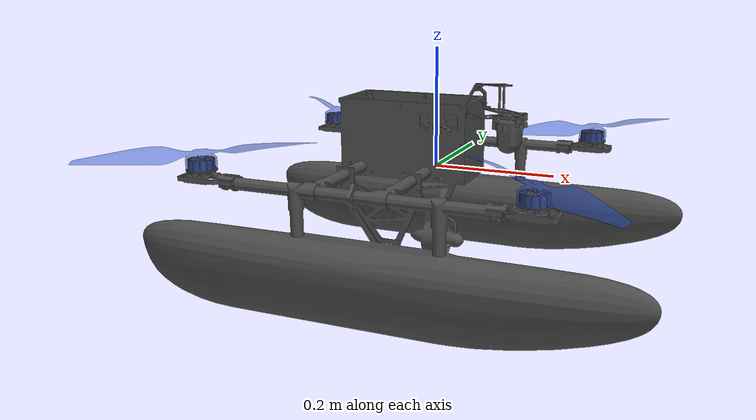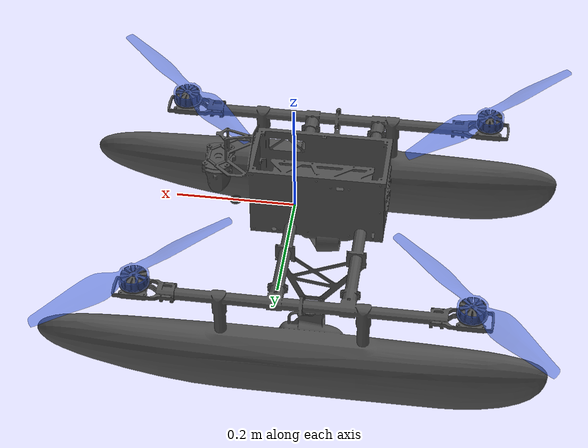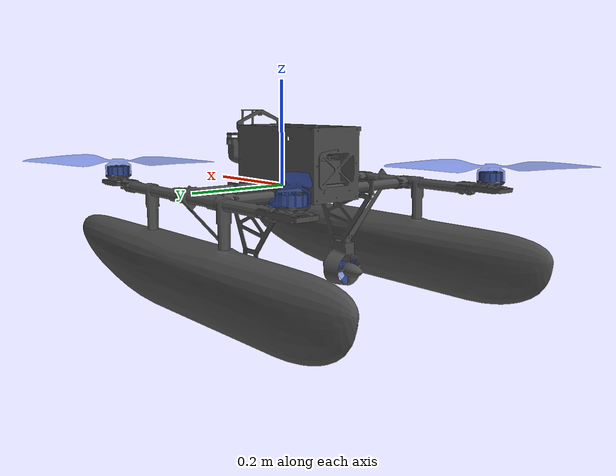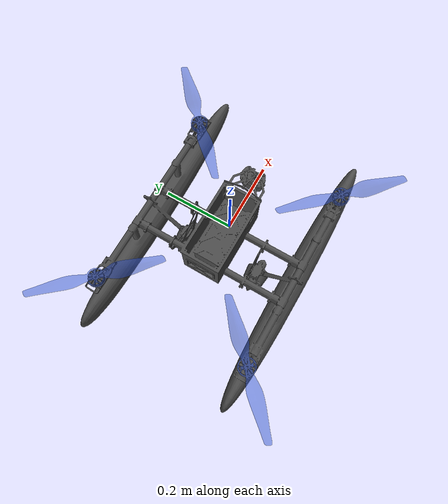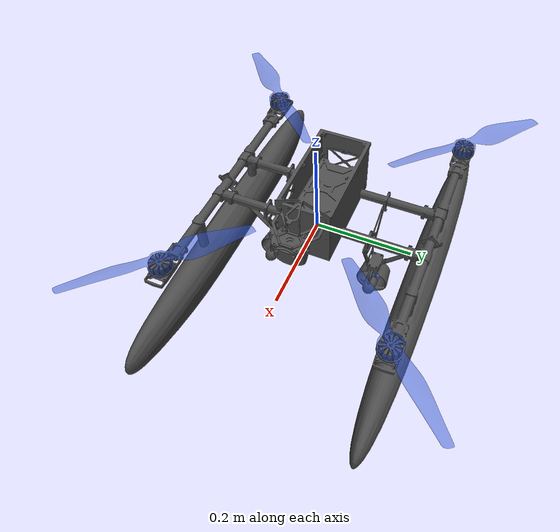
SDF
<sdf version='1.5'>
  <model name='amp_drone_camera'>
    <link name='base_link'>
      <pose>0 0 0 0 0 0</pose> <!-- This pose is the visual offset of the vehicle + the reference frame -->
      <inertial>
        <pose>-0.044 -0.00085582 0.01685 0 0 0</pose> <!-- This pose is the center of mass of the vehicle-->
        <mass>5.05</mass>
        <inertia>
          <ixx>0.139889</ixx>
          <ixy>1.263e-05</ixy>
          <ixz>3.3972e-04</ixz>
          <iyy>0.132500</iyy>
          <iyz>2.36e-06</iyz>
          <izz>0.220874</izz>
        </inertia>
      </inertial>
      <collision name='base_link_collision'>
        <pose>0 0 -0.0385 0 0 0</pose> <!-- The z Axis has an offset to create a centered box for collisions-->
        <geometry>
          <box>
            <size>0.88 0.57 0.35</size>
          </box>
        </geometry>
        <surface>
          <contact>
            <ode>
              <min_depth>0.001</min_depth>
              <max_vel>0</max_vel>
            </ode>
          </contact>
          <friction>
            <ode/>
          </friction>
        </surface>
      </collision>
      <visual name='base_link_visual'>
        <pose>0 0 0 0 0 0</pose>
        <geometry>
          <mesh>
            <scale>1 1 1</scale>
            <uri>model://amp_drone_camera/meshes/base_link.STL</uri>
          </mesh>
        </geometry>
        <material>
          <script>
            <name>Gazebo/DarkGrey</name>
            <uri>file://media/materials/scripts/gazebo.material</uri>
          </script>
        </material>
      </visual>
      <gravity>1</gravity>
      <velocity_decay/>
   </link>

   <!-- IMU link-->
   <link name='/imu_link'>
      <pose>0 0 0 0 0 0</pose>
      <inertial>
        <pose>0 0 0 0 0 0</pose>
        <mass>0.015</mass>
        <inertia>
          <ixx>1e-05</ixx>
          <ixy>0</ixy>
          <ixz>0</ixz>
          <iyy>1e-05</iyy>
          <iyz>0</iyz>
          <izz>1e-05</izz>
        </inertia>
      </inertial>
    </link>
    <joint name='/imu_joint' type='revolute'>
      <child>/imu_link</child>
      <parent>base_link</parent>
      <axis>
        <xyz>1 0 0</xyz>
        <limit>
          <lower>0</lower>
          <upper>0</upper>
          <effort>0</effort>
          <velocity>0</velocity>
        </limit>
        <dynamics>
          <spring_reference>0</spring_reference>
          <spring_stiffness>0</spring_stiffness>
        </dynamics>
        <use_parent_model_frame>1</use_parent_model_frame>
      </axis>
    </joint>

   <!-- Rotor 1-->
   <link name='rotor_0'>
    <pose>0.2235 0.2295 0.0077 0 0 0.7854</pose>
      <inertial>
        <pose>0 0 0.0258 0 0 0</pose>
        <mass>0.116</mass>
        <inertia>
          <ixx>3.09562e-05</ixx>
          <ixy>-3.77446e-06</ixy>
          <ixz>-1.50909e-12</ixz>
          <iyy> 2.92643e-04</iyy>
          <iyz>-7.69251e-10</iyz>
          <izz>3.01533e-04</izz>
        </inertia>
      </inertial>
      <collision name='rotor_0_collision'>
        <pose>0 0 0.025 0 0 0</pose>
        <geometry>
          <cylinder>
            <length>0.05</length>
            <radius>0.19</radius>
          </cylinder>
        </geometry>
        <surface>
          <contact>
            <ode/>
          </contact>
          <friction>
            <ode/>
          </friction>
        </surface>
      </collision>
      <visual name='rotor_0_visual'>
        <pose>0 0 0 0 0 0</pose>
        <geometry>
          <mesh>
            <scale>1 1 1</scale>
            <uri>model://amp_drone_camera/meshes/propeller_0.STL</uri>
          </mesh>
        </geometry>
        <material>
          <script>
            <name>Gazebo/BlueTransparent</name>
            <uri>file://media/materials/scripts/gazebo.material</uri>
          </script>
        </material>
      </visual>
      <gravity>1</gravity>
      <velocity_decay/>
      <self_collide>0</self_collide>
    </link>
    <joint name='rotor_0_joint' type='revolute'>
      <child>rotor_0</child>
      <parent>base_link</parent>
      <pose>0 0 0 0 0 0</pose>
      <axis>
        <xyz>0 0 -1</xyz>
        <limit>
          <lower>-1e+16</lower>
          <upper>1e+16</upper>
        </limit>
        <dynamics>
          <spring_reference>0</spring_reference>
          <spring_stiffness>0</spring_stiffness>
        </dynamics>
        <use_parent_model_frame>1</use_parent_model_frame>
      </axis>
    </joint>

    <!-- Rotor 2-->
    <link name='rotor_1'>
    <pose>0.2235 -0.2295 0.0077 0 0 -0.7854</pose>
      <inertial>
        <pose>0 0 0.0258 0 0 0</pose>
        <mass>0.116</mass>
        <inertia>
          <ixx>3.09562e-05</ixx>
          <ixy>-3.77446e-06</ixy>
          <ixz>-1.50909e-12</ixz>
          <iyy> 2.92643e-04</iyy>
          <iyz>-7.69251e-10</iyz>
          <izz>3.01533e-04</izz>
        </inertia>
      </inertial>
      <collision name='rotor_1_collision'>
        <pose>0 0 0.025 0 0 0</pose>
        <geometry>
          <cylinder>
            <length>0.05</length>
            <radius>0.19</radius>
          </cylinder>
        </geometry>
        <surface>
          <contact>
            <ode/>
          </contact>
          <friction>
            <ode/>
          </friction>
        </surface>
      </collision>
      <visual name='rotor_1_visual'>
        <pose>0 0 0 0 0 0</pose>
        <geometry>
          <mesh>
            <scale>1 1 1</scale>
            <uri>model://amp_drone_camera/meshes/propeller_1.STL</uri>
          </mesh>
        </geometry>
        <material>
          <script>
            <name>Gazebo/BlueTransparent</name>
            <uri>file://media/materials/scripts/gazebo.material</uri>
          </script>
        </material>
      </visual>
      <gravity>1</gravity>
      <velocity_decay/>
      <self_collide>0</self_collide>
    </link>
    <joint name='rotor_1_joint' type='revolute'>
      <child>rotor_1</child>
      <parent>base_link</parent>
      <pose>0 0 0 0 0 0</pose>
      <axis>
        <xyz>0 0 -1</xyz>
        <limit>
          <lower>-1e+16</lower>
          <upper>1e+16</upper>
        </limit>
        <dynamics>
          <spring_reference>0</spring_reference>
          <spring_stiffness>0</spring_stiffness>
        </dynamics>
        <use_parent_model_frame>1</use_parent_model_frame>
      </axis>
    </joint>

    <!-- Rotor 3-->
    <link name='rotor_2'>
    <pose>-0.3095 -0.2295 0.0077 0 0 0.7854</pose>
      <inertial>
        <pose>0 0 0.0258 0 0 0</pose>
        <mass>0.116</mass>
        <inertia>
          <ixx>3.09562e-05</ixx>
          <ixy>-3.77446e-06</ixy>
          <ixz>-1.50909e-12</ixz>
          <iyy> 2.92643e-04</iyy>
          <iyz>-7.69251e-10</iyz>
          <izz>3.01533e-04</izz>
        </inertia>
      </inertial>
      <collision name='rotor_2_collision'>
        <pose>0 0 0.025 0 0 0</pose>
        <geometry>
          <cylinder>
            <length>0.05</length>
            <radius>0.19</radius>
          </cylinder>
        </geometry>
        <surface>
          <contact>
            <ode/>
          </contact>
          <friction>
            <ode/>
          </friction>
        </surface>
      </collision>
      <visual name='rotor_2_visual'>
        <pose>0 0 0 0 0 0</pose>
        <geometry>
          <mesh>
            <scale>1 1 1</scale>
            <uri>model://amp_drone_camera/meshes/propeller_0.STL</uri>
          </mesh>
        </geometry>
        <material>
          <script>
            <name>Gazebo/BlueTransparent</name>
            <uri>file://media/materials/scripts/gazebo.material</uri>
          </script>
        </material>
      </visual>
      <gravity>1</gravity>
      <velocity_decay/>
      <self_collide>0</self_collide>
    </link>
    <joint name='rotor_2_joint' type='revolute'>
      <child>rotor_2</child>
      <parent>base_link</parent>
      <pose>0 0 0 0 0 0</pose>
      <axis>
        <xyz>0 0 -1</xyz>
        <limit>
          <lower>-1e+16</lower>
          <upper>1e+16</upper>
        </limit>
        <dynamics>
          <spring_reference>0</spring_reference>
          <spring_stiffness>0</spring_stiffness>
        </dynamics>
        <use_parent_model_frame>1</use_parent_model_frame>
      </axis>
    </joint>

    <!-- Rotor 4-->
    <link name='rotor_3'>
    <pose>-0.3095 0.2295 0.0077 0 0 -0.7854</pose>
      <inertial>
        <pose>0 0 0.0258 0 0 0</pose>
        <mass>0.116</mass>
        <inertia>
          <ixx>3.09562e-05</ixx>
          <ixy>-3.77446e-06</ixy>
          <ixz>-1.50909e-12</ixz>
          <iyy> 2.92643e-04</iyy>
          <iyz>-7.69251e-10</iyz>
          <izz>3.01533e-04</izz>
        </inertia>
      </inertial>
      <collision name='rotor_3_collision'>
        <pose>0 0 0.025 0 0 0</pose>
        <geometry>
          <cylinder>
            <length>0.05</length>
            <radius>0.19</radius>
          </cylinder>
        </geometry>
        <surface>
          <contact>
            <ode/>
          </contact>
          <friction>
            <ode/>
          </friction>
        </surface>
      </collision>
      <visual name='rotor_3_visual'>
        <pose>0 0 0 0 0 0</pose>
        <geometry>
          <mesh>
            <scale>1 1 1</scale>
            <uri>model://amp_drone_camera/meshes/propeller_1.STL</uri>
          </mesh>
        </geometry>
        <material>
          <script>
            <name>Gazebo/BlueTransparent</name>
            <uri>file://media/materials/scripts/gazebo.material</uri>
          </script>
        </material>
      </visual>
      <gravity>1</gravity>
      <velocity_decay/>
      <self_collide>0</self_collide>
    </link>
    <joint name='rotor_3_joint' type='revolute'>
      <child>rotor_3</child>
      <parent>base_link</parent>
      <pose>0 0 0 0 0 0</pose>
      <axis>
        <xyz>0 0 -1</xyz>
        <limit>
          <lower>-1e+16</lower>
          <upper>1e+16</upper>
        </limit>
        <dynamics>
          <spring_reference>0</spring_reference>
          <spring_stiffness>0</spring_stiffness>
        </dynamics>
        <use_parent_model_frame>1</use_parent_model_frame>
      </axis>
    </joint>

    <!-- xxx-Rotor 5-->
    <link name='rotor_4'>
    <pose>-0.05687 0.1215 -0.17291 1 0 0</pose>
      <inertial>
        <pose>0.013 0 0 0 0 0</pose>
        <mass>0.04</mass>
        <inertia>
          <ixx>5e-06</ixx>
          <ixy>0</ixy>
          <ixz>0</ixz>
          <iyy>5e-06</iyy>
          <iyz>0</iyz>
          <izz>5e-06</izz>
        </inertia>
      </inertial>
      <visual name='rotor_4_visual'>
        <pose>0 0 0 0 0 0</pose>
        <geometry>
          <mesh>
            <scale>1 1 1</scale>
            <uri>model://amp_drone_camera/meshes/thruster-L.STL</uri>
          </mesh>
        </geometry>
        <material>
          <script>
            <name>Gazebo/BlueTransparent</name>
            <uri>file://media/materials/scripts/gazebo.material</uri>
          </script>
        </material>
      </visual>
      <gravity>1</gravity>
      <velocity_decay/>
      <self_collide>0</self_collide>
    </link>
    <joint name='rotor_4_joint' type='revolute'>
      <child>rotor_4</child>
      <parent>base_link</parent>
      <pose>0 0 0 0 0 0</pose>
      <axis>
        <xyz>1 0 0</xyz>
        <limit>
          <lower>-1e+16</lower>
          <upper>1e+16</upper>
        </limit>
        <dynamics>
          <spring_reference>0</spring_reference>
          <spring_stiffness>0</spring_stiffness>
        </dynamics>
        <use_parent_model_frame>1</use_parent_model_frame>
      </axis>
    </joint>

    <!-- xxx-Rotor 6-->
    <link name='rotor_5'>
    <pose>-0.05687 -0.1215 -0.17291 1 0 0</pose>
      <inertial>
        <pose>0.013 0 0 0 0 0</pose>
        <mass>0.04</mass>
        <inertia>
          <ixx>5e-06</ixx>
          <ixy>0</ixy>
          <ixz>0</ixz>
          <iyy>5e-06</iyy>
          <iyz>0</iyz>
          <izz>5e-06</izz>
        </inertia>
      </inertial>
      <visual name='rotor_5_visual'>
        <pose>0 0 0 0 0 0</pose>
        <geometry>
          <mesh>
            <scale>1 1 1</scale>
            <uri>model://amp_drone_camera/meshes/thruster-R.STL</uri>
          </mesh>
        </geometry>
        <material>
          <script>
            <name>Gazebo/BlueTransparent</name>
            <uri>file://media/materials/scripts/gazebo.material</uri>
          </script>
        </material>
      </visual>
      <gravity>1</gravity>
      <velocity_decay/>
      <self_collide>0</self_collide>
    </link>
    <joint name='rotor_5_joint' type='revolute'>
      <child>rotor_5</child>
      <parent>base_link</parent>
      <pose>0 0 0 0 0 0</pose>
      <axis>
        <xyz>1 0 0</xyz>
        <limit>
          <lower>-1e+16</lower>
          <upper>1e+16</upper>
        </limit>
        <dynamics>
          <spring_reference>0</spring_reference>
          <spring_stiffness>0</spring_stiffness>
        </dynamics>
        <use_parent_model_frame>1</use_parent_model_frame>
      </axis>
    </joint>

    <!-- cam link-->
    <link name="camera_link">
    <pose>0.126 0 0.0443 1.5708 1.5708 0</pose>
      <inertial>
        <pose>0 0 0 0 0 0</pose>
        <mass>0.001</mass>
        <inertia>
          <ixx>3.2061e-05</ixx>
          <ixy>-1.169e-08</ixy>
          <ixz>-4.2601e-10</ixz>
          <iyy>3.0815e-05</iyy>
          <iyz>5.2182e-10</iyz>
          <izz>5.1652e-06</izz>
        </inertia>
      </inertial>
      <collision name='camera_collision'>
        <pose>0 0 0 0 0 0</pose>
        <geometry>
          <box>
            <size>0.023813 0.027686 0.092682</size>
          </box>
        </geometry>
        <surface>
          <friction>
            <ode>
              <mu>1</mu>
              <mu2>1</mu2>
            </ode>
          </friction>
          <contact>
            <ode>
              <kp>1e+8</kp>
              <kd>1</kd>
              <max_vel>0.01</max_vel>
              <min_depth>0.001</min_depth>
            </ode>
          </contact>
        </surface>    <!-- cam link-->
    <link name="camera_link">
    <pose>0 0 -0.013633 1.5708 1.5708 0</pose>
      <inertial>
        <pose>0 0 0 0 0 0</pose>
        <mass>0.001</mass>
        <inertia>
          <ixx>3.2061e-05</ixx>
          <ixy>-1.169e-08</ixy>
          <ixz>-4.2601e-10</ixz>
          <iyy>3.0815e-05</iyy>
          <iyz>5.2182e-10</iyz>
          <izz>5.1652e-06</izz>
        </inertia>
      </inertial>
      <collision name='camera_collision'>
        <pose>0 0 0 0 0 0</pose>
        <geometry>
          <box>
            <size>0.023813 0.027686 0.092682</size>
          </box>
        </geometry>
        <surface>
          <friction>
            <ode>
              <mu>1</mu>
              <mu2>1</mu2>
            </ode>
          </friction>
          <contact>
            <ode>
              <kp>1e+8</kp>
              <kd>1</kd>
              <max_vel>0.01</max_vel>
              <min_depth>0.001</min_depth>
            </ode>
          </contact>
        </surface>
      </collision>
      <visual name='camera_visual'>
        <pose>0 0 0 0 0 0</pose>
        <geometry>
          <mesh>
            <scale>1 1 1</scale>
            <uri>model://amp_drone_camera/meshes/cam_link.STL</uri>
          </mesh>
        </geometry>
        <material>
          <script>
            <name>Gazebo/DarkGrey</name>
            <uri>file://media/materials/scripts/gazebo.material</uri>
          </script>
        </material>
      </visual>
    <gravity>1</gravity>
    <velocity_decay/>
      <self_collide>0</self_collide>
      <sensor name="camera_imu" type="imu">
        <always_on>1</always_on>
      </sensor>
      <sensor name="camera" type="camera">
        <pose>0 0 0 -1.5708 0 0</pose>
        <camera>
          <horizontal_fov>2.0</horizontal_fov>
          <image>
            <format>R8G8B8</format>
            <width>640</width>
            <height>480</height>
          </image>
          <clip>
            <near>0.05</near>
            <far>15000</far>
          </clip>
        </camera>
      </sensor>
    </link>
      </collision>
      <visual name='camera_visual'>
        <pose>0 0 0 0 0 0</pose>
        <geometry>
          <mesh>
            <scale>1 1 1</scale>
            <uri>model://amp_drone_camera/meshes/cam_link.STL</uri>
          </mesh>
        </geometry>
        <material>
          <script>
            <name>Gazebo/DarkGrey</name>
            <uri>file://media/materials/scripts/gazebo.material</uri>
          </script>
        </material>
      </visual>
    <gravity>1</gravity>
    <velocity_decay/>
      <self_collide>0</self_collide>
      <sensor name="camera_imu" type="imu">
        <always_on>1</always_on>
      </sensor>
      <sensor name="camera" type="camera">
        <pose>0 0 0 -1.5708 0 0</pose>
        <camera>
          <horizontal_fov>2.0</horizontal_fov>
          <image>
            <format>R8G8B8</format>
            <width>640</width>
            <height>480</height>
          </image>
          <clip>
            <near>0.05</near>
            <far>15000</far>
          </clip>
        </camera>
        <always_on>1</always_on>
        <update_rate>10</update_rate>
        <visualize>true</visualize>

        <plugin filename="libgazebo_ros_camera.so" name="camera_en_ros">
            <robotNamespace>amp_drone_camera</robotNamespace>
            <cameraName>camera_link</cameraName>
            <imageTopicName>raw_image</imageTopicName>
            <cameraInfoTopicName>info_image</cameraInfoTopicName>
            <FrameName>cameraImage</FrameName>
            <Cy>0</Cy>
            <Cx>0</Cx>
            <updateRate>30.0</updateRate>
        </plugin>

        <plugin name="GstCameraPlugin" filename="libgazebo_gst_camera_plugin.so">
            <robotNamespace></robotNamespace>
            <udpPort>5600</udpPort>
        </plugin>

      </sensor>
    </link>
    <joint name='camera_joint' type='fixed'>
      <child>camera_link</child>
      <parent>base_link</parent>
      <pose>0 0 0 0 0 0</pose>
      <axis>
        <xyz>-1 0 0</xyz>
      </axis>
    </joint>

    <!-- Rosbag Plugin-->
    <plugin name='rosbag' filename='libgazebo_multirotor_base_plugin.so'>
      <robotNamespace/>
      <linkName>base_link</linkName>
      <rotorVelocitySlowdownSim>10</rotorVelocitySlowdownSim>
    </plugin>

    <!-- Motor 2 Plugin-->
    <plugin name='front_right_motor_model' filename='libgazebo_motor_model.so'>
      <robotNamespace/>
      <jointName>rotor_1_joint</jointName>
      <linkName>rotor_1</linkName>
      <turningDirection>ccw</turningDirection>
      <timeConstantUp>0.0125</timeConstantUp>
      <timeConstantDown>0.025</timeConstantDown>
      <maxRotVelocity>800</maxRotVelocity>
      <motorConstant>57e-06</motorConstant>
      <momentConstant>0.0239</momentConstant>
      <commandSubTopic>/gazebo/command/motor_speed</commandSubTopic>
      <motorNumber>0</motorNumber>
      <rotorDragCoefficient>0.0057</rotorDragCoefficient>
      <rollingMomentCoefficient>0.000019</rollingMomentCoefficient>
      <motorSpeedPubTopic>/motor_speed/0</motorSpeedPubTopic>
      <rotorVelocitySlowdownSim>10</rotorVelocitySlowdownSim>
      <joint_control_pid>
        <p>0.1</p>
        <i>0</i>
        <d>0</d>
        <iMax>0</iMax>
        <iMin>0</iMin>
        <cmdMax>3</cmdMax>
        <cmdMin>-3</cmdMin>
      </joint_control_pid>
    </plugin>

    <!-- Motor 4 Plugin-->
    <plugin name='back_left_motor_model' filename='libgazebo_motor_model.so'>
      <robotNamespace/>
      <jointName>rotor_3_joint</jointName>
      <linkName>rotor_3</linkName>
      <turningDirection>ccw</turningDirection>
      <timeConstantUp>0.0125</timeConstantUp>
      <timeConstantDown>0.025</timeConstantDown>
      <maxRotVelocity>800</maxRotVelocity>
      <motorConstant>57e-06</motorConstant>
      <momentConstant>0.0239</momentConstant>
      <commandSubTopic>/gazebo/command/motor_speed</commandSubTopic>
      <motorNumber>1</motorNumber>
      <rotorDragCoefficient>0.0057</rotorDragCoefficient>
      <rollingMomentCoefficient>0.000019</rollingMomentCoefficient>
      <motorSpeedPubTopic>/motor_speed/1</motorSpeedPubTopic>
      <rotorVelocitySlowdownSim>10</rotorVelocitySlowdownSim>
      <joint_control_pid>
        <p>0.1</p>
        <i>0</i>
        <d>0</d>
        <iMax>0</iMax>
        <iMin>0</iMin>
        <cmdMax>3</cmdMax>
        <cmdMin>-3</cmdMin>
      </joint_control_pid>
    </plugin>

    <!-- Motor 1 Plugin-->
    <plugin name='front_left_motor_model' filename='libgazebo_motor_model.so'>
      <robotNamespace/>
      <jointName>rotor_0_joint</jointName>
      <linkName>rotor_0</linkName>
      <turningDirection>cw</turningDirection>
      <timeConstantUp>0.0125</timeConstantUp>
      <timeConstantDown>0.025</timeConstantDown>
      <maxRotVelocity>800</maxRotVelocity>
      <motorConstant>57e-06</motorConstant>
      <momentConstant>0.0239</momentConstant>
      <commandSubTopic>/gazebo/command/motor_speed</commandSubTopic>
      <motorNumber>2</motorNumber>
      <rotorDragCoefficient>0.0057</rotorDragCoefficient>
      <rollingMomentCoefficient>0.000019</rollingMomentCoefficient>
      <motorSpeedPubTopic>/motor_speed/2</motorSpeedPubTopic>
      <rotorVelocitySlowdownSim>10</rotorVelocitySlowdownSim>
      <joint_control_pid>
        <p>0.1</p>
        <i>0</i>
        <d>0</d>
        <iMax>0</iMax>
        <iMin>0</iMin>
        <cmdMax>3</cmdMax>
        <cmdMin>-3</cmdMin>
      </joint_control_pid>
    </plugin>

    <!-- Motor 3 Plugin-->
    <plugin name='back_right_motor_model' filename='libgazebo_motor_model.so'>
      <robotNamespace/>
      <jointName>rotor_2_joint</jointName>
      <linkName>rotor_2</linkName>
      <turningDirection>cw</turningDirection>
      <timeConstantUp>0.0125</timeConstantUp>
      <timeConstantDown>0.025</timeConstantDown>
      <maxRotVelocity>800</maxRotVelocity>
      <motorConstant>57e-06</motorConstant>
      <momentConstant>0.0239</momentConstant>
      <commandSubTopic>/gazebo/command/motor_speed</commandSubTopic>
      <motorNumber>3</motorNumber>
      <rotorDragCoefficient>0.0057</rotorDragCoefficient>
      <rollingMomentCoefficient>0.000019</rollingMomentCoefficient>
      <motorSpeedPubTopic>/motor_speed/3</motorSpeedPubTopic>
      <rotorVelocitySlowdownSim>10</rotorVelocitySlowdownSim>
      <joint_control_pid>
        <p>0.1</p>
        <i>0</i>
        <d>0</d>
        <iMax>0</iMax>
        <iMin>0</iMin>
        <cmdMax>3</cmdMax>
        <cmdMin>-3</cmdMin>
      </joint_control_pid>
    </plugin>

    <!--xxx- Motor 5 Plugin-->
    <plugin name='left_voyage_motor_model' filename='libgazebo_motor_model.so'>
      <robotNamespace/>
      <jointName>rotor_4_joint</jointName>
      <linkName>rotor_4</linkName>
      <turningDirection>cw</turningDirection>
      <timeConstantUp>0.0125</timeConstantUp>
      <timeConstantDown>0.025</timeConstantDown>
      <maxRotVelocity>800</maxRotVelocity>
      <motorConstant>57e-06</motorConstant>
      <momentConstant>0.0239</momentConstant>
      <commandSubTopic>/gazebo/command/motor_speed</commandSubTopic>
      <motorNumber>4</motorNumber>
      <rotorDragCoefficient>0.0057</rotorDragCoefficient>
      <rollingMomentCoefficient>0.000019</rollingMomentCoefficient>
      <motorSpeedPubTopic>/motor_speed/4</motorSpeedPubTopic>
      <rotorVelocitySlowdownSim>10</rotorVelocitySlowdownSim>
      <joint_control_pid>
        <p>0.1</p>
        <i>0</i>
        <d>0</d>
        <iMax>0</iMax>
        <iMin>0</iMin>
        <cmdMax>3</cmdMax>
        <cmdMin>-3</cmdMin>
      </joint_control_pid>
    </plugin>

    <!-- xxx- Motor 6 Plugin-->
    <plugin name='right_voyage_motor_model' filename='libgazebo_motor_model.so'>
      <robotNamespace/>
      <jointName>rotor_5_joint</jointName>
      <linkName>rotor_5</linkName>
      <turningDirection>ccw</turningDirection>
      <timeConstantUp>0.0125</timeConstantUp>
      <timeConstantDown>0.025</timeConstantDown>
      <maxRotVelocity>800</maxRotVelocity>
      <motorConstant>57e-06</motorConstant>
      <momentConstant>0.0239</momentConstant>
      <commandSubTopic>/gazebo/command/motor_speed</commandSubTopic>
      <motorNumber>5</motorNumber>
      <rotorDragCoefficient>0.0057</rotorDragCoefficient>
      <rollingMomentCoefficient>0.000019</rollingMomentCoefficient>
      <motorSpeedPubTopic>/motor_speed/5</motorSpeedPubTopic>
      <rotorVelocitySlowdownSim>10</rotorVelocitySlowdownSim>
      <joint_control_pid>
        <p>0.1</p>
        <i>0</i>
        <d>0</d>
        <iMax>0</iMax>
        <iMin>0</iMin>
        <cmdMax>3</cmdMax>
        <cmdMin>-3</cmdMin>
      </joint_control_pid>
    </plugin>

    <!-- Magnetometer Plugin-->
    <plugin name='magnetometer_plugin' filename='libgazebo_magnetometer_plugin.so'>
      <robotNamespace/>
      <pubRate>20</pubRate>
      <noiseDensity>0.0004</noiseDensity>
      <randomWalk>6.4e-06</randomWalk>
      <biasCorrelationTime>600</biasCorrelationTime>
      <magTopic>/mag</magTopic>
    </plugin>

    <!-- GPS Plugin (spoof) -->
    <include>
      <uri>model://gps</uri>
      <pose>0.1 0 0 0 0 0</pose>
      <name>gps0</name>
    </include>
    <joint name='gps0_joint' type='fixed'>
      <child>gps0::link</child>
      <parent>base_link</parent>
    </joint>

    <!-- Barometer Plugin-->
    <plugin name='barometer_plugin' filename='libgazebo_barometer_plugin.so'>
      <robotNamespace/>
      <pubRate>10</pubRate>
      <baroTopic>/baro</baroTopic>
    </plugin>

    <!-- Mavlink Plugin-->
    <plugin name='mavlink_interface' filename='libgazebo_mavlink_interface.so'>
      <robotNamespace/>
      <imuSubTopic>/imu</imuSubTopic>
      <gpsSubTopic>/gps</gpsSubTopic>
      <magSubTopic>/mag</magSubTopic>
      <baroSubTopic>/baro</baroSubTopic>
      <mavlink_addr>INADDR_ANY</mavlink_addr>
      <mavlink_udp_port>14560</mavlink_udp_port>
      <mavlink_tcp_port>4560</mavlink_tcp_port>
      <serialEnabled>0</serialEnabled>
      <serialDevice>/dev/ttyACM0</serialDevice>
      <baudRate>921600</baudRate>
      <qgc_addr>INADDR_ANY</qgc_addr>
      <qgc_udp_port>14550</qgc_udp_port>
      <sdk_addr>INADDR_ANY</sdk_addr>
      <sdk_udp_port>14540</sdk_udp_port>
      <hil_mode>0</hil_mode>
      <hil_state_level>0</hil_state_level>
      <enable_lockstep>1</enable_lockstep>
      <use_tcp>1</use_tcp>
      <vehicle_is_tailsitter>0</vehicle_is_tailsitter>
      <send_vision_estimation>1</send_vision_estimation>
      <send_odometry>1</send_odometry>
      <motorSpeedCommandPubTopic>/gazebo/command/motor_speed</motorSpeedCommandPubTopic>
      <control_channels>
        <channel name='rotor1'>
          <input_index>0</input_index>
          <input_offset>0</input_offset>
          <input_scaling>900</input_scaling>
          <zero_position_disarmed>0</zero_position_disarmed>
          <zero_position_armed>100</zero_position_armed>
          <joint_control_type>velocity</joint_control_type>
          <joint_name>rotor_1_joint</joint_name>
        </channel>
        <channel name='rotor2'>
          <input_index>1</input_index>
          <input_offset>0</input_offset>
          <input_scaling>900</input_scaling>
          <zero_position_disarmed>0</zero_position_disarmed>
          <zero_position_armed>100</zero_position_armed>
          <joint_control_type>velocity</joint_control_type>
          <joint_name>rotor_3_joint</joint_name>
        </channel>
        <channel name='rotor3'>
          <input_index>2</input_index>
          <input_offset>0</input_offset>
          <input_scaling>900</input_scaling>
          <zero_position_disarmed>0</zero_position_disarmed>
          <zero_position_armed>100</zero_position_armed>
          <joint_control_type>velocity</joint_control_type>
          <joint_name>rotor_0_joint</joint_name>
        </channel>
        <channel name='rotor4'>
          <input_index>3</input_index>
          <input_offset>0</input_offset>
          <input_scaling>900</input_scaling>
          <zero_position_disarmed>0</zero_position_disarmed>
          <zero_position_armed>100</zero_position_armed>
          <joint_control_type>velocity</joint_control_type>
          <joint_name>rotor_2_joint</joint_name>
        </channel>
        <channel name='rotor5'>
          <input_index>4</input_index>
          <input_offset>0</input_offset>
          <input_scaling>900</input_scaling>
          <zero_position_disarmed>0</zero_position_disarmed>
          <zero_position_armed>100</zero_position_armed>
          <joint_control_type>velocity</joint_control_type>
          <joint_name>rotor_4_joint</joint_name>
        </channel>
        <channel name='rotor6'>
          <input_index>5</input_index>
          <input_offset>0</input_offset>
          <input_scaling>900</input_scaling>
          <zero_position_disarmed>0</zero_position_disarmed>
          <zero_position_armed>100</zero_position_armed>
          <joint_control_type>velocity</joint_control_type>
          <joint_name>rotor_5_joint</joint_name>
        </channel>
        <channel name='rotor5'>
          <input_index>4</input_index>
          <input_offset>0</input_offset>
          <input_scaling>900</input_scaling>
          <zero_position_disarmed>0</zero_position_disarmed>
          <zero_position_armed>100</zero_position_armed>
          <joint_control_type>velocity</joint_control_type>
          <joint_name>rotor_4_joint</joint_name>
        </channel>
        <channel name='rotor6'>
          <input_index>5</input_index>
          <input_offset>0</input_offset>
          <input_scaling>900</input_scaling>
          <zero_position_disarmed>0</zero_position_disarmed>
          <zero_position_armed>100</zero_position_armed>
          <joint_control_type>velocity</joint_control_type>
          <joint_name>rotor_5_joint</joint_name>
        </channel>
      </control_channels>
    </plugin>
    <static>0</static>

    <!-- IMU plugin-->
    <plugin name='rotors_gazebo_imu_plugin' filename='libgazebo_imu_plugin.so'>
      <robotNamespace/>
      <linkName>/imu_link</linkName>
      <imuTopic>/imu</imuTopic>
      <gyroscopeNoiseDensity>0.0003394</gyroscopeNoiseDensity>
      <gyroscopeRandomWalk>3.8785e-05</gyroscopeRandomWalk>
      <gyroscopeBiasCorrelationTime>1000.0</gyroscopeBiasCorrelationTime>
      <gyroscopeTurnOnBiasSigma>0.0087</gyroscopeTurnOnBiasSigma>
      <accelerometerNoiseDensity>0.004</accelerometerNoiseDensity>
      <accelerometerRandomWalk>0.006</accelerometerRandomWalk>
      <accelerometerBiasCorrelationTime>300.0</accelerometerBiasCorrelationTime>
      <accelerometerTurnOnBiasSigma>0.196</accelerometerTurnOnBiasSigma>
    </plugin>

    <!--Ground Truth-->
    <plugin name="ground_truth" filename="libgazebo_ros_p3d.so">
      <frameName>map</frameName>
      <bodyName>base_link</bodyName>
      <topicName>/odom</topicName>
      <updateRate>30.0</updateRate>
      <xyzOffset>0 0 -0.1975016</xyzOffset>
      <rpyOffset>0 0 0</rpyOffset>
    </plugin>

  </model>
</sdf>

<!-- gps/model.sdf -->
<sdf version="1.6">
  <model name="gps">
    <link name="link">
      <pose>0 0 0 0 0 0</pose>
      <inertial>
        <pose>0 0 0 0 0 0</pose>
        <mass>0.015</mass>
        <inertia>
          <ixx>1e-05</ixx>
          <ixy>0</ixy>
          <ixz>0</ixz>
          <iyy>1e-05</iyy>
          <iyz>0</iyz>
          <izz>1e-05</izz>
        </inertia>
      </inertial>
      <visual name="visual">
        <geometry>
          <cylinder>
            <radius>0.01</radius>
            <length>0.002</length>
          </cylinder>
        </geometry>
        <material>
          <script>
            <name>Gazebo/Black</name>
            <uri>file://usr/share/gz/gz-sim8/media/gazebo.material</uri>
          </script>
        </material>
      </visual>
      <sensor name="gps" type="gps">
        <pose>0 0 0 0 0 0</pose>
        <update_rate>5.0</update_rate>
        <always_on>true</always_on>
        <visualize>false</visualize>
        <!-- GpsSensor noise currently not used -->
        <plugin name="gps_plugin" filename="libgazebo_gps_plugin.so">
          <robotNamespace></robotNamespace>
          <gpsNoise>true</gpsNoise>
          <gpsXYRandomWalk>2.0</gpsXYRandomWalk>
          <gpsZRandomWalk>4.0</gpsZRandomWalk>
          <gpsXYNoiseDensity>2.0e-4</gpsXYNoiseDensity>
          <gpsZNoiseDensity>4.0e-4</gpsZNoiseDensity>
          <gpsVXYNoiseDensity>0.2</gpsVXYNoiseDensity>
          <gpsVZNoiseDensity>0.4</gpsVZNoiseDensity>
        </plugin>
      </sensor>
    </link>
  </model>
</sdf>
